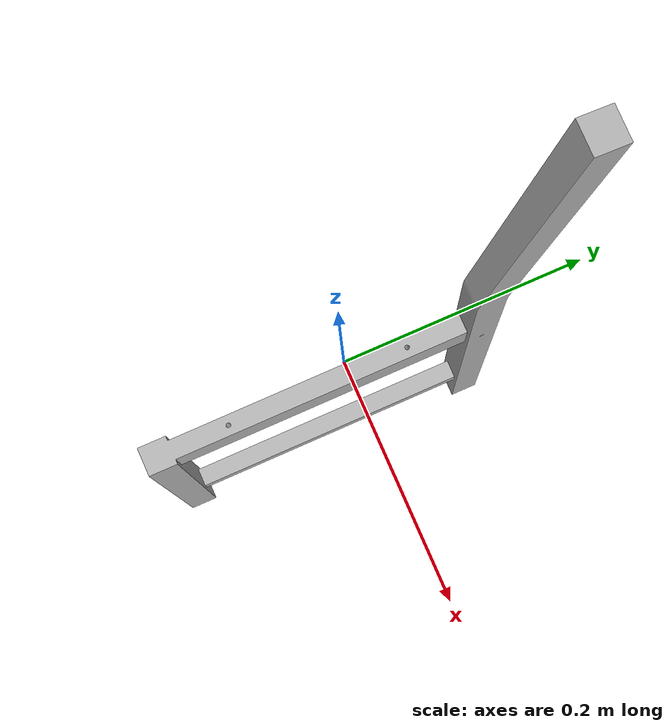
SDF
<?xml version='1.0'?>
<sdf version="1.4">
  <model name="chair_ivar_part0">

    <link name="mesh_link0">
      <visual name="visual0">
        <geometry>
          <mesh>
            <uri>model://ivar_chair/meshes/0.stl</uri>
            <scale>0.00065 0.00065 0.00065</scale>
          </mesh>
        </geometry>
      </visual>
      <collision name="collision0">
        <geometry>
          <mesh>
            <uri>model://ivar_chair/meshes/0.stl</uri>
            <scale>0.00065 0.00065 0.00065</scale>
          </mesh>
        </geometry>
      </collision>
    </link>
  </model>
</sdf>
